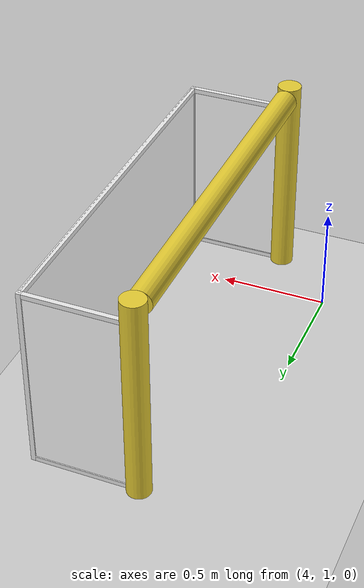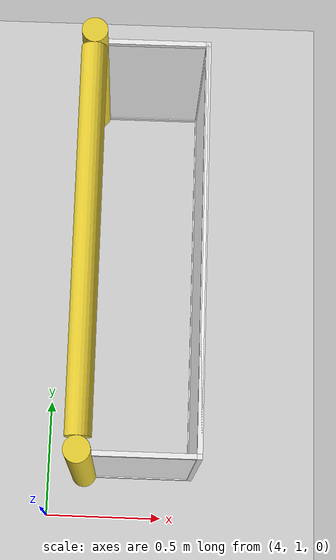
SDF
<sdf version="1.6">
 <world name="default">
  <model name="ground_plane">
   <static>1</static>
   <link name="link">
    <collision name="collision">
     <geometry><plane><normal>0 0 1</normal><size>100 100</size></plane></geometry>
     <surface><friction><ode><mu>100</mu><mu2>50</mu2></ode></friction></surface>
    </collision>
    <visual name="visual">
     <cast_shadows>0</cast_shadows>
     <geometry><plane><normal>0 0 1</normal><size>100 100</size></plane></geometry>
     <material>
      <script><uri>file://media/materials/scripts/gazebo.material</uri><name>Gazebo/Grey</name></script>
     </material>
    </visual>
   </link>
  </model>
  <model name="RoboCup_2014_SPL_Goal">
   <link name="left_post">
    <pose>0 0.8 0.45 0 -0 0</pose>
    <visual name="visual">
     <geometry><cylinder><radius>0.05</radius><length>0.9</length></cylinder></geometry>
     <material>
      <script><uri>file://media/materials/scripts/gazebo.material</uri><name>Gazebo/ZincYellow</name></script>
      <ambient>0.9725 0.9529 0.2078 1</ambient>
      <diffuse>0.9725 0.9529 0.2078 1</diffuse>
      <specular>0.9725 0.9529 0.2078 1</specular>
      <emissive>0 0 0 1</emissive>
     </material>
    </visual>
    <collision name="collision">
     <geometry><cylinder><radius>0.05</radius><length>0.9</length></cylinder></geometry>
     <surface>
      <friction>
       <ode><mu>1</mu><mu2>1</mu2><fdir1>0 0 0</fdir1><slip1>0</slip1><slip2>0</slip2></ode>
       <torsional>
        <coefficient>1</coefficient>
        <patch_radius>0</patch_radius>
        <surface_radius>0</surface_radius>
        <use_patch_radius>1</use_patch_radius>
        <ode><slip>0</slip></ode>
       </torsional>
      </friction>
      <bounce><restitution_coefficient>0</restitution_coefficient><threshold>1e+06</threshold></bounce>
      <contact>
       <collide_without_contact>0</collide_without_contact>
       <collide_without_contact_bitmask>1</collide_without_contact_bitmask>
       <collide_bitmask>1</collide_bitmask>
       <ode>
        <soft_cfm>0</soft_cfm>
        <soft_erp>0.2</soft_erp>
        <kp>1e+13</kp>
        <kd>1</kd>
        <max_vel>0.01</max_vel>
        <min_depth>0</min_depth>
       </ode>
       <bullet>
        <split_impulse>1</split_impulse>
        <split_impulse_penetration_threshold>-0.01</split_impulse_penetration_threshold>
        <soft_cfm>0</soft_cfm>
        <soft_erp>0.2</soft_erp>
        <kp>1e+13</kp>
        <kd>1</kd>
       </bullet>
      </contact>
     </surface>
    </collision>
   </link>
   <link name="center_net">
    <pose>0.44 0 0.4 0 -0 0</pose>
    <inertial>
     <mass>1</mass>
     <inertia><ixx>1</ixx><ixy>0</ixy><ixz>0</ixz><iyy>1</iyy><iyz>0</iyz><izz>1</izz></inertia>
    </inertial>
    <visual name="visual">
     <geometry><box><size>0.01 1.6 0.8</size></box></geometry>
     <material>
      <script>
       <uri>model://robocup09_spl_field/materials/scripts/</uri>
       <uri>model://robocup09_spl_field/materials/textures/</uri>
       <name>RoboCup/Net</name>
      </script>
      <ambient>1 1 1 1</ambient>
      <diffuse>1 1 1 1</diffuse>
      <specular>0 0 0 1</specular>
      <emissive>1 1 0 1</emissive>
      <shader type="vertex"><normal_map>__default__</normal_map></shader>
     </material>
    </visual>
    <collision name="collision">
     <geometry><box><size>0.01 1.6 0.8</size></box></geometry>
     <surface>
      <friction>
       <ode><mu>1</mu><mu2>1</mu2><fdir1>0 0 0</fdir1><slip1>0</slip1><slip2>0</slip2></ode>
       <torsional>
        <coefficient>1</coefficient>
        <patch_radius>0</patch_radius>
        <surface_radius>0</surface_radius>
        <use_patch_radius>1</use_patch_radius>
        <ode><slip>0</slip></ode>
       </torsional>
      </friction>
      <bounce><restitution_coefficient>0</restitution_coefficient><threshold>1e+06</threshold></bounce>
      <contact>
       <collide_without_contact>0</collide_without_contact>
       <collide_without_contact_bitmask>1</collide_without_contact_bitmask>
       <collide_bitmask>1</collide_bitmask>
       <ode>
        <soft_cfm>0</soft_cfm>
        <soft_erp>0.2</soft_erp>
        <kp>1e+13</kp>
        <kd>1</kd>
        <max_vel>0.01</max_vel>
        <min_depth>0</min_depth>
       </ode>
       <bullet>
        <split_impulse>1</split_impulse>
        <split_impulse_penetration_threshold>-0.01</split_impulse_penetration_threshold>
        <soft_cfm>0</soft_cfm>
        <soft_erp>0.2</soft_erp>
        <kp>1e+13</kp>
        <kd>1</kd>
       </bullet>
      </contact>
     </surface>
    </collision>
   </link>
   <link name="center_support_horiz_lower">
    <pose>0.44 0 0.01 3.14159 1.57079 3.14159</pose>
    <visual name="visual">
     <geometry><box><size>0.02 1.58 0.02</size></box></geometry>
     <material>
      <script><uri>file://media/materials/scripts/gazebo.material</uri><name>Gazebo/White</name></script>
      <ambient>1 1 1 1</ambient>
      <diffuse>1 1 1 1</diffuse>
      <specular>0 0 0 1</specular>
      <emissive>0 0 0 1</emissive>
     </material>
    </visual>
    <collision name="collision">
     <geometry><box><size>0.02 1.58 0.02</size></box></geometry>
     <surface>
      <friction>
       <ode><mu>1</mu><mu2>1</mu2><fdir1>0 0 0</fdir1><slip1>0</slip1><slip2>0</slip2></ode>
       <torsional>
        <coefficient>1</coefficient>
        <patch_radius>0</patch_radius>
        <surface_radius>0</surface_radius>
        <use_patch_radius>1</use_patch_radius>
        <ode><slip>0</slip></ode>
       </torsional>
      </friction>
      <bounce><restitution_coefficient>0</restitution_coefficient><threshold>1e+06</threshold></bounce>
      <contact>
       <collide_without_contact>0</collide_without_contact>
       <collide_without_contact_bitmask>1</collide_without_contact_bitmask>
       <collide_bitmask>1</collide_bitmask>
       <ode>
        <soft_cfm>0</soft_cfm>
        <soft_erp>0.2</soft_erp>
        <kp>1e+13</kp>
        <kd>1</kd>
        <max_vel>0.01</max_vel>
        <min_depth>0</min_depth>
       </ode>
       <bullet>
        <split_impulse>1</split_impulse>
        <split_impulse_penetration_threshold>-0.01</split_impulse_penetration_threshold>
        <soft_cfm>0</soft_cfm>
        <soft_erp>0.2</soft_erp>
        <kp>1e+13</kp>
        <kd>1</kd>
       </bullet>
      </contact>
     </surface>
    </collision>
   </link>
   <link name="center_support_horiz_upper">
    <pose>0.44 0 0.79 3.14159 1.57079 3.14159</pose>
    <visual name="visual">
     <geometry><box><size>0.02 1.58 0.02</size></box></geometry>
     <material>
      <script><uri>file://media/materials/scripts/gazebo.material</uri><name>Gazebo/White</name></script>
      <ambient>1 1 1 1</ambient>
      <diffuse>1 1 1 1</diffuse>
      <specular>0 0 0 1</specular>
      <emissive>0 0 0 1</emissive>
     </material>
    </visual>
    <collision name="collision">
     <geometry><box><size>0.02 1.58 0.02</size></box></geometry>
     <surface>
      <friction>
       <ode><mu>1</mu><mu2>1</mu2><fdir1>0 0 0</fdir1><slip1>0</slip1><slip2>0</slip2></ode>
       <torsional>
        <coefficient>1</coefficient>
        <patch_radius>0</patch_radius>
        <surface_radius>0</surface_radius>
        <use_patch_radius>1</use_patch_radius>
        <ode><slip>0</slip></ode>
       </torsional>
      </friction>
      <bounce><restitution_coefficient>0</restitution_coefficient><threshold>1e+06</threshold></bounce>
      <contact>
       <collide_without_contact>0</collide_without_contact>
       <collide_without_contact_bitmask>1</collide_without_contact_bitmask>
       <collide_bitmask>1</collide_bitmask>
       <ode>
        <soft_cfm>0</soft_cfm>
        <soft_erp>0.2</soft_erp>
        <kp>1e+13</kp>
        <kd>1</kd>
        <max_vel>0.01</max_vel>
        <min_depth>0</min_depth>
       </ode>
       <bullet>
        <split_impulse>1</split_impulse>
        <split_impulse_penetration_threshold>-0.01</split_impulse_penetration_threshold>
        <soft_cfm>0</soft_cfm>
        <soft_erp>0.2</soft_erp>
        <kp>1e+13</kp>
        <kd>1</kd>
       </bullet>
      </contact>
     </surface>
    </collision>
   </link>
   <link name="crossbar">
    <pose>0 0 0.85 1.57002 1.57 2.4e-05</pose>
    <visual name="visual">
     <geometry><cylinder><radius>0.05</radius><length>1.5</length></cylinder></geometry>
     <material>
      <script><uri>file://media/materials/scripts/gazebo.material</uri><name>Gazebo/ZincYellow</name></script>
      <ambient>0.9725 0.9529 0.2078 1</ambient>
      <diffuse>0.9725 0.9529 0.2078 1</diffuse>
      <specular>0.9725 0.9529 0.2078 1</specular>
      <emissive>0 0 0 1</emissive>
     </material>
    </visual>
    <collision name="collision">
     <geometry><cylinder><radius>0.05</radius><length>1.5</length></cylinder></geometry>
     <surface>
      <friction>
       <ode><mu>1</mu><mu2>1</mu2><fdir1>0 0 0</fdir1><slip1>0</slip1><slip2>0</slip2></ode>
       <torsional>
        <coefficient>1</coefficient>
        <patch_radius>0</patch_radius>
        <surface_radius>0</surface_radius>
        <use_patch_radius>1</use_patch_radius>
        <ode><slip>0</slip></ode>
       </torsional>
      </friction>
      <bounce><restitution_coefficient>0</restitution_coefficient><threshold>1e+06</threshold></bounce>
      <contact>
       <collide_without_contact>0</collide_without_contact>
       <collide_without_contact_bitmask>1</collide_without_contact_bitmask>
       <collide_bitmask>1</collide_bitmask>
       <ode>
        <soft_cfm>0</soft_cfm>
        <soft_erp>0.2</soft_erp>
        <kp>1e+13</kp>
        <kd>1</kd>
        <max_vel>0.01</max_vel>
        <min_depth>0</min_depth>
       </ode>
       <bullet>
        <split_impulse>1</split_impulse>
        <split_impulse_penetration_threshold>-0.01</split_impulse_penetration_threshold>
        <soft_cfm>0</soft_cfm>
        <soft_erp>0.2</soft_erp>
        <kp>1e+13</kp>
        <kd>1</kd>
       </bullet>
      </contact>
     </surface>
    </collision>
   </link>
   <link name="left_net">
    <pose>0.24 0.8 0.4 0 -0 0</pose>
    <visual name="visual">
     <geometry><box><size>0.38 0.01 0.76</size></box></geometry>
     <material>
      <script>
       <uri>model://robocup09_spl_field/materials/scripts/</uri>
       <uri>model://robocup09_spl_field/materials/textures/</uri>
       <name>RoboCup/Net</name>
      </script>
      <ambient>1 1 1 1</ambient>
      <diffuse>1 1 1 1</diffuse>
      <specular>0 0 0 1</specular>
      <emissive>0 0 0 1</emissive>
     </material>
    </visual>
    <collision name="collision">
     <geometry><box><size>0.38 0.01 0.76</size></box></geometry>
     <surface>
      <friction>
       <ode><mu>1</mu><mu2>1</mu2><fdir1>0 0 0</fdir1><slip1>0</slip1><slip2>0</slip2></ode>
       <torsional>
        <coefficient>1</coefficient>
        <patch_radius>0</patch_radius>
        <surface_radius>0</surface_radius>
        <use_patch_radius>1</use_patch_radius>
        <ode><slip>0</slip></ode>
       </torsional>
      </friction>
      <bounce><restitution_coefficient>0</restitution_coefficient><threshold>1e+06</threshold></bounce>
      <contact>
       <collide_without_contact>0</collide_without_contact>
       <collide_without_contact_bitmask>1</collide_without_contact_bitmask>
       <collide_bitmask>1</collide_bitmask>
       <ode>
        <soft_cfm>0</soft_cfm>
        <soft_erp>0.2</soft_erp>
        <kp>1e+13</kp>
        <kd>1</kd>
        <max_vel>0.01</max_vel>
        <min_depth>0</min_depth>
       </ode>
       <bullet>
        <split_impulse>1</split_impulse>
        <split_impulse_penetration_threshold>-0.01</split_impulse_penetration_threshold>
        <soft_cfm>0</soft_cfm>
        <soft_erp>0.2</soft_erp>
        <kp>1e+13</kp>
        <kd>1</kd>
       </bullet>
      </contact>
     </surface>
    </collision>
   </link>
   <link name="left_support_horiz_lower">
    <pose>0.24 0.8 0.01 0 -0 0</pose>
    <visual name="visual">
     <geometry><box><size>0.38 0.02 0.02</size></box></geometry>
     <material>
      <script><uri>file://media/materials/scripts/gazebo.material</uri><name>Gazebo/White</name></script>
      <ambient>1 1 1 1</ambient>
      <diffuse>1 1 1 1</diffuse>
      <specular>0 0 0 1</specular>
      <emissive>0 0 0 1</emissive>
     </material>
    </visual>
    <collision name="collision">
     <geometry><box><size>0.38 0.02 0.02</size></box></geometry>
     <surface>
      <friction>
       <ode><mu>1</mu><mu2>1</mu2><fdir1>0 0 0</fdir1><slip1>0</slip1><slip2>0</slip2></ode>
       <torsional>
        <coefficient>1</coefficient>
        <patch_radius>0</patch_radius>
        <surface_radius>0</surface_radius>
        <use_patch_radius>1</use_patch_radius>
        <ode><slip>0</slip></ode>
       </torsional>
      </friction>
      <bounce><restitution_coefficient>0</restitution_coefficient><threshold>1e+06</threshold></bounce>
      <contact>
       <collide_without_contact>0</collide_without_contact>
       <collide_without_contact_bitmask>1</collide_without_contact_bitmask>
       <collide_bitmask>1</collide_bitmask>
       <ode>
        <soft_cfm>0</soft_cfm>
        <soft_erp>0.2</soft_erp>
        <kp>1e+13</kp>
        <kd>1</kd>
        <max_vel>0.01</max_vel>
        <min_depth>0</min_depth>
       </ode>
       <bullet>
        <split_impulse>1</split_impulse>
        <split_impulse_penetration_threshold>-0.01</split_impulse_penetration_threshold>
        <soft_cfm>0</soft_cfm>
        <soft_erp>0.2</soft_erp>
        <kp>1e+13</kp>
        <kd>1</kd>
       </bullet>
      </contact>
     </surface>
    </collision>
   </link>
   <link name="left_support_horiz_upper">
    <pose>0.24 0.8 0.79 0 -0 0</pose>
    <visual name="visual">
     <geometry><box><size>0.38 0.02 0.02</size></box></geometry>
     <material>
      <script><uri>file://media/materials/scripts/gazebo.material</uri><name>Gazebo/White</name></script>
      <ambient>1 1 1 1</ambient>
      <diffuse>1 1 1 1</diffuse>
      <specular>0 0 0 1</specular>
      <emissive>0 0 0 1</emissive>
     </material>
    </visual>
    <collision name="collision">
     <geometry><box><size>0.38 0.02 0.02</size></box></geometry>
     <surface>
      <friction>
       <ode><mu>1</mu><mu2>1</mu2><fdir1>0 0 0</fdir1><slip1>0</slip1><slip2>0</slip2></ode>
       <torsional>
        <coefficient>1</coefficient>
        <patch_radius>0</patch_radius>
        <surface_radius>0</surface_radius>
        <use_patch_radius>1</use_patch_radius>
        <ode><slip>0</slip></ode>
       </torsional>
      </friction>
      <bounce><restitution_coefficient>0</restitution_coefficient><threshold>1e+06</threshold></bounce>
      <contact>
       <collide_without_contact>0</collide_without_contact>
       <collide_without_contact_bitmask>1</collide_without_contact_bitmask>
       <collide_bitmask>1</collide_bitmask>
       <ode>
        <soft_cfm>0</soft_cfm>
        <soft_erp>0.2</soft_erp>
        <kp>1e+13</kp>
        <kd>1</kd>
        <max_vel>0.01</max_vel>
        <min_depth>0</min_depth>
       </ode>
       <bullet>
        <split_impulse>1</split_impulse>
        <split_impulse_penetration_threshold>-0.01</split_impulse_penetration_threshold>
        <soft_cfm>0</soft_cfm>
        <soft_erp>0.2</soft_erp>
        <kp>1e+13</kp>
        <kd>1</kd>
       </bullet>
      </contact>
     </surface>
    </collision>
   </link>
   <link name="left_support_vertical">
    <pose>0.44 0.8 0.4 3.14159 1.57079 3.14159</pose>
    <visual name="visual">
     <geometry><box><size>0.8 0.02 0.02</size></box></geometry>
     <material>
      <script><uri>file://media/materials/scripts/gazebo.material</uri><name>Gazebo/White</name></script>
      <ambient>1 1 1 1</ambient>
      <diffuse>1 1 1 1</diffuse>
      <specular>0 0 0 1</specular>
      <emissive>0 0 0 1</emissive>
     </material>
    </visual>
    <collision name="collision">
     <geometry><box><size>0.8 0.02 0.02</size></box></geometry>
     <surface>
      <friction>
       <ode><mu>1</mu><mu2>1</mu2><fdir1>0 0 0</fdir1><slip1>0</slip1><slip2>0</slip2></ode>
       <torsional>
        <coefficient>1</coefficient>
        <patch_radius>0</patch_radius>
        <surface_radius>0</surface_radius>
        <use_patch_radius>1</use_patch_radius>
        <ode><slip>0</slip></ode>
       </torsional>
      </friction>
      <bounce><restitution_coefficient>0</restitution_coefficient><threshold>1e+06</threshold></bounce>
      <contact>
       <collide_without_contact>0</collide_without_contact>
       <collide_without_contact_bitmask>1</collide_without_contact_bitmask>
       <collide_bitmask>1</collide_bitmask>
       <ode>
        <soft_cfm>0</soft_cfm>
        <soft_erp>0.2</soft_erp>
        <kp>1e+13</kp>
        <kd>1</kd>
        <max_vel>0.01</max_vel>
        <min_depth>0</min_depth>
       </ode>
       <bullet>
        <split_impulse>1</split_impulse>
        <split_impulse_penetration_threshold>-0.01</split_impulse_penetration_threshold>
        <soft_cfm>0</soft_cfm>
        <soft_erp>0.2</soft_erp>
        <kp>1e+13</kp>
        <kd>1</kd>
       </bullet>
      </contact>
     </surface>
    </collision>
   </link>
   <link name="right_net">
    <pose>0.24 -0.8 0.4 0 -0 0</pose>
    <visual name="visual">
     <geometry><box><size>0.38 0.01 0.76</size></box></geometry>
     <material>
      <script>
       <uri>model://robocup09_spl_field/materials/scripts/</uri>
       <uri>model://robocup09_spl_field/materials/textures/</uri>
       <name>RoboCup/Net</name>
      </script>
      <ambient>1 1 1 1</ambient>
      <diffuse>1 1 1 1</diffuse>
      <specular>0 0 0 1</specular>
      <emissive>0 0 0 1</emissive>
     </material>
    </visual>
    <collision name="collision">
     <geometry><box><size>0.38 0.01 0.76</size></box></geometry>
     <surface>
      <friction>
       <ode><mu>1</mu><mu2>1</mu2><fdir1>0 0 0</fdir1><slip1>0</slip1><slip2>0</slip2></ode>
       <torsional>
        <coefficient>1</coefficient>
        <patch_radius>0</patch_radius>
        <surface_radius>0</surface_radius>
        <use_patch_radius>1</use_patch_radius>
        <ode><slip>0</slip></ode>
       </torsional>
      </friction>
      <bounce><restitution_coefficient>0</restitution_coefficient><threshold>1e+06</threshold></bounce>
      <contact>
       <collide_without_contact>0</collide_without_contact>
       <collide_without_contact_bitmask>1</collide_without_contact_bitmask>
       <collide_bitmask>1</collide_bitmask>
       <ode>
        <soft_cfm>0</soft_cfm>
        <soft_erp>0.2</soft_erp>
        <kp>1e+13</kp>
        <kd>1</kd>
        <max_vel>0.01</max_vel>
        <min_depth>0</min_depth>
       </ode>
       <bullet>
        <split_impulse>1</split_impulse>
        <split_impulse_penetration_threshold>-0.01</split_impulse_penetration_threshold>
        <soft_cfm>0</soft_cfm>
        <soft_erp>0.2</soft_erp>
        <kp>1e+13</kp>
        <kd>1</kd>
       </bullet>
      </contact>
     </surface>
    </collision>
   </link>
   <link name="right_post">
    <pose>0 -0.8 0.45 0 -0 0</pose>
    <visual name="visual">
     <geometry><cylinder><radius>0.05</radius><length>0.9</length></cylinder></geometry>
     <material>
      <script><uri>file://media/materials/scripts/gazebo.material</uri><name>Gazebo/ZincYellow</name></script>
      <ambient>0.9725 0.9529 0.2078 1</ambient>
      <diffuse>0.9725 0.9529 0.2078 1</diffuse>
      <specular>0.9725 0.9529 0.2078 1</specular>
      <emissive>0 0 0 1</emissive>
     </material>
    </visual>
    <collision name="collision">
     <geometry><cylinder><radius>0.05</radius><length>0.9</length></cylinder></geometry>
     <surface>
      <friction>
       <ode><mu>1</mu><mu2>1</mu2><fdir1>0 0 0</fdir1><slip1>0</slip1><slip2>0</slip2></ode>
       <torsional>
        <coefficient>1</coefficient>
        <patch_radius>0</patch_radius>
        <surface_radius>0</surface_radius>
        <use_patch_radius>1</use_patch_radius>
        <ode><slip>0</slip></ode>
       </torsional>
      </friction>
      <bounce><restitution_coefficient>0</restitution_coefficient><threshold>1e+06</threshold></bounce>
      <contact>
       <collide_without_contact>0</collide_without_contact>
       <collide_without_contact_bitmask>1</collide_without_contact_bitmask>
       <collide_bitmask>1</collide_bitmask>
       <ode>
        <soft_cfm>0</soft_cfm>
        <soft_erp>0.2</soft_erp>
        <kp>1e+13</kp>
        <kd>1</kd>
        <max_vel>0.01</max_vel>
        <min_depth>0</min_depth>
       </ode>
       <bullet>
        <split_impulse>1</split_impulse>
        <split_impulse_penetration_threshold>-0.01</split_impulse_penetration_threshold>
        <soft_cfm>0</soft_cfm>
        <soft_erp>0.2</soft_erp>
        <kp>1e+13</kp>
        <kd>1</kd>
       </bullet>
      </contact>
     </surface>
    </collision>
   </link>
   <link name="right_support_horiz_lower">
    <pose>0.24 -0.8 0.01 0 -0 0</pose>
    <visual name="visual">
     <geometry><box><size>0.38 0.02 0.02</size></box></geometry>
     <material>
      <script><uri>file://media/materials/scripts/gazebo.material</uri><name>Gazebo/White</name></script>
      <ambient>1 1 1 1</ambient>
      <diffuse>1 1 1 1</diffuse>
      <specular>0 0 0 1</specular>
      <emissive>0 0 0 1</emissive>
     </material>
    </visual>
    <collision name="collision">
     <geometry><box><size>0.38 0.02 0.02</size></box></geometry>
     <surface>
      <friction>
       <ode><mu>1</mu><mu2>1</mu2><fdir1>0 0 0</fdir1><slip1>0</slip1><slip2>0</slip2></ode>
       <torsional>
        <coefficient>1</coefficient>
        <patch_radius>0</patch_radius>
        <surface_radius>0</surface_radius>
        <use_patch_radius>1</use_patch_radius>
        <ode><slip>0</slip></ode>
       </torsional>
      </friction>
      <bounce><restitution_coefficient>0</restitution_coefficient><threshold>1e+06</threshold></bounce>
      <contact>
       <collide_without_contact>0</collide_without_contact>
       <collide_without_contact_bitmask>1</collide_without_contact_bitmask>
       <collide_bitmask>1</collide_bitmask>
       <ode>
        <soft_cfm>0</soft_cfm>
        <soft_erp>0.2</soft_erp>
        <kp>1e+13</kp>
        <kd>1</kd>
        <max_vel>0.01</max_vel>
        <min_depth>0</min_depth>
       </ode>
       <bullet>
        <split_impulse>1</split_impulse>
        <split_impulse_penetration_threshold>-0.01</split_impulse_penetration_threshold>
        <soft_cfm>0</soft_cfm>
        <soft_erp>0.2</soft_erp>
        <kp>1e+13</kp>
        <kd>1</kd>
       </bullet>
      </contact>
     </surface>
    </collision>
   </link>
   <link name="right_support_horiz_upper">
    <pose>0.24 -0.8 0.79 0 -0 0</pose>
    <visual name="visual">
     <geometry><box><size>0.38 0.02 0.02</size></box></geometry>
     <material>
      <script><uri>file://media/materials/scripts/gazebo.material</uri><name>Gazebo/White</name></script>
      <ambient>1 1 1 1</ambient>
      <diffuse>1 1 1 1</diffuse>
      <specular>0 0 0 1</specular>
      <emissive>0 0 0 1</emissive>
     </material>
    </visual>
    <collision name="collision">
     <geometry><box><size>0.38 0.02 0.02</size></box></geometry>
     <surface>
      <friction>
       <ode><mu>1</mu><mu2>1</mu2><fdir1>0 0 0</fdir1><slip1>0</slip1><slip2>0</slip2></ode>
       <torsional>
        <coefficient>1</coefficient>
        <patch_radius>0</patch_radius>
        <surface_radius>0</surface_radius>
        <use_patch_radius>1</use_patch_radius>
        <ode><slip>0</slip></ode>
       </torsional>
      </friction>
      <bounce><restitution_coefficient>0</restitution_coefficient><threshold>1e+06</threshold></bounce>
      <contact>
       <collide_without_contact>0</collide_without_contact>
       <collide_without_contact_bitmask>1</collide_without_contact_bitmask>
       <collide_bitmask>1</collide_bitmask>
       <ode>
        <soft_cfm>0</soft_cfm>
        <soft_erp>0.2</soft_erp>
        <kp>1e+13</kp>
        <kd>1</kd>
        <max_vel>0.01</max_vel>
        <min_depth>0</min_depth>
       </ode>
       <bullet>
        <split_impulse>1</split_impulse>
        <split_impulse_penetration_threshold>-0.01</split_impulse_penetration_threshold>
        <soft_cfm>0</soft_cfm>
        <soft_erp>0.2</soft_erp>
        <kp>1e+13</kp>
        <kd>1</kd>
       </bullet>
      </contact>
     </surface>
    </collision>
   </link>
   <link name="right_support_vertical">
    <pose>0.44 -0.8 0.4 3.14159 1.57079 3.14159</pose>
    <visual name="visual">
     <geometry><box><size>0.8 0.02 0.02</size></box></geometry>
     <material>
      <script><uri>file://media/materials/scripts/gazebo.material</uri><name>Gazebo/White</name></script>
      <ambient>1 1 1 1</ambient>
      <diffuse>1 1 1 1</diffuse>
      <specular>0 0 0 1</specular>
      <emissive>0 0 0 1</emissive>
     </material>
    </visual>
    <collision name="collision">
     <geometry><box><size>0.8 0.02 0.02</size></box></geometry>
     <surface>
      <friction>
       <ode><mu>1</mu><mu2>1</mu2><fdir1>0 0 0</fdir1><slip1>0</slip1><slip2>0</slip2></ode>
       <torsional>
        <coefficient>1</coefficient>
        <patch_radius>0</patch_radius>
        <surface_radius>0</surface_radius>
        <use_patch_radius>1</use_patch_radius>
        <ode><slip>0</slip></ode>
       </torsional>
      </friction>
      <bounce><restitution_coefficient>0</restitution_coefficient><threshold>1e+06</threshold></bounce>
      <contact>
       <collide_without_contact>0</collide_without_contact>
       <collide_without_contact_bitmask>1</collide_without_contact_bitmask>
       <collide_bitmask>1</collide_bitmask>
       <ode>
        <soft_cfm>0</soft_cfm>
        <soft_erp>0.2</soft_erp>
        <kp>1e+13</kp>
        <kd>1</kd>
        <max_vel>0.01</max_vel>
        <min_depth>0</min_depth>
       </ode>
       <bullet>
        <split_impulse>1</split_impulse>
        <split_impulse_penetration_threshold>-0.01</split_impulse_penetration_threshold>
        <soft_cfm>0</soft_cfm>
        <soft_erp>0.2</soft_erp>
        <kp>1e+13</kp>
        <kd>1</kd>
       </bullet>
      </contact>
     </surface>
    </collision>
   </link>
   <static>1</static>
   <pose>4.16837 1.95033 0.317711 0 -0 0</pose>
  </model>
 </world>
</sdf>
